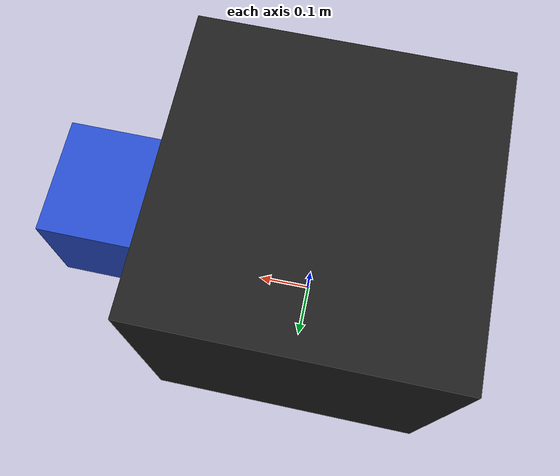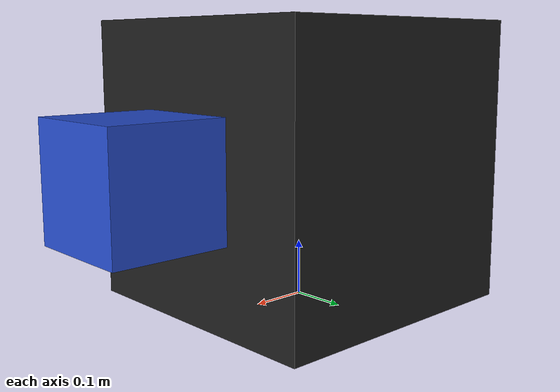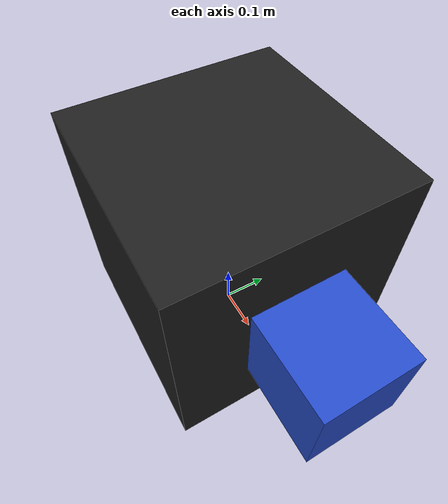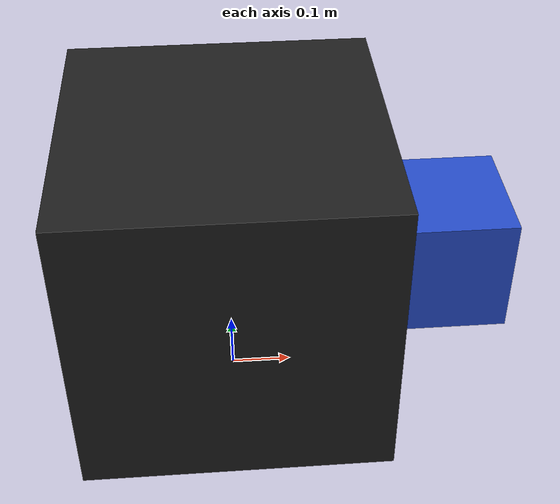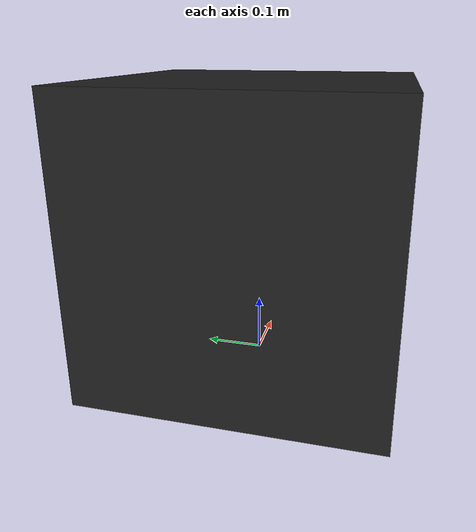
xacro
<?xml version="1.0"?>
<!-- Revolute-Revolute Manipulator -->
<robot name="drone" xmlns:xacro="http://www.ros.org/wiki/xacro">

  <!-- Constants for robot dimensions -->
  <xacro:property name="mass" value="0.3" />
  <xacro:property name="size" value="0.5" />

  <xacro:property name="camera_size" value="0.2" />

  <!-- Import all Gazebo-customization elements, including Gazebo colors -->
  <xacro:include filename="$(find drone_swarm)/urdf/drone.gazebo" />
  <!-- Import Rviz colors -->
  <xacro:include filename="$(find drone_swarm)/urdf/materials.xacro" />

  <link name="body">
    <visual>
      <origin xyz="0 0 ${size/2}" rpy="0 0 0"/>
      <geometry>
	<box size="${size} ${size} ${size}"/>
      </geometry>
      <material name="black"/>
    </visual>

    <collision>
      <origin xyz="0 0 0" rpy="0 0 0"/>
      <geometry>
	<box size="${size} ${size} ${size}"/>
      </geometry>
    </collision>

    <inertial>
      <origin xyz="0 0 0" rpy="0 0 0"/>
      <mass value="${mass}"/>
      <inertia
	  ixx="${mass / 12.0 * (size*size + size*size)}" ixy="0.0" ixz="0.0"
	  iyy="${mass / 12.0 * (size*size + size*size)}" iyz="0.0"
	  izz="${mass / 12.0 * (size*size + size*size)}" />
    </inertial>
  </link >

  <!-- Camera -->
  <link name="camera">
    <visual>
      <origin xyz="${camera_size/2} 0 0" rpy="0 0 0"/>
      <geometry>
	<box size="${camera_size} ${camera_size} ${camera_size}"/>
      </geometry>
      <material name="blue"/>
    </visual>

    <collision>
      <origin xyz="${camera_size/2} 0 0" rpy="0 0 0"/>
      <geometry>
	<box size="${camera_size} ${camera_size} ${camera_size}"/>
      </geometry>
    </collision>

    <inertial>
      <mass value="1e-5" />
      <origin xyz="0 0 0" rpy="0 0 0"/>
      <inertia ixx="1e-6" ixy="0" ixz="0" iyy="1e-6" iyz="0" izz="1e-6" />
    </inertial>
  </link >

  <link name="camera_link_optical">
  </link>

  <joint name="camera_optical_joint" type="fixed">
    <!-- these values have to be these values otherwise the gazebo camera image
        won't be aligned properly with the frame it is supposedly originating from -->
    <origin xyz="0 0 0" rpy="${-pi/2} 0 ${-pi/2}"/>
    <parent link="camera"/>
    <child link="camera_link_optical"/>
  </joint>

  <joint name="camera_joint" type="fixed">
    <parent link="body"/>
    <child link="camera"/>
    <origin xyz="${size/2} 0 ${size/2}" rpy="0 0 0"/>
    <axis xyz="0 1 0"/>
    <dynamics damping="0.7"/>
  </joint>

  <!-- Hokuyo Laser -->
  <joint name="hokuyo_joint" type="fixed">
    <axis xyz="0 1 0" />
    <origin xyz="0 0 -0.05" rpy="0 0 0"/>
    <parent link="body"/>
    <child link="hokuyo_link"/>
  </joint>

  <link name="hokuyo_link">
    <collision>
      <origin xyz="0 0 0" rpy="0 0 0"/>
      <geometry>
	<box size="0.1 0.1 0.1"/>
      </geometry>
    </collision>

    <visual>
      <origin xyz="0 0 0" rpy="0 0 0"/>
      <geometry>
        <box size="0.1 0.1 0.1"/>
      </geometry>
      <material name="red"/>
    </visual>

    <inertial>
      <mass value="1e-5" />
      <origin xyz="0 0 0" rpy="0 0 0"/>
      <inertia ixx="1e-6" ixy="0" ixz="0" iyy="1e-6" iyz="0" izz="1e-6" />
    </inertial>
  </link>

</robot>
